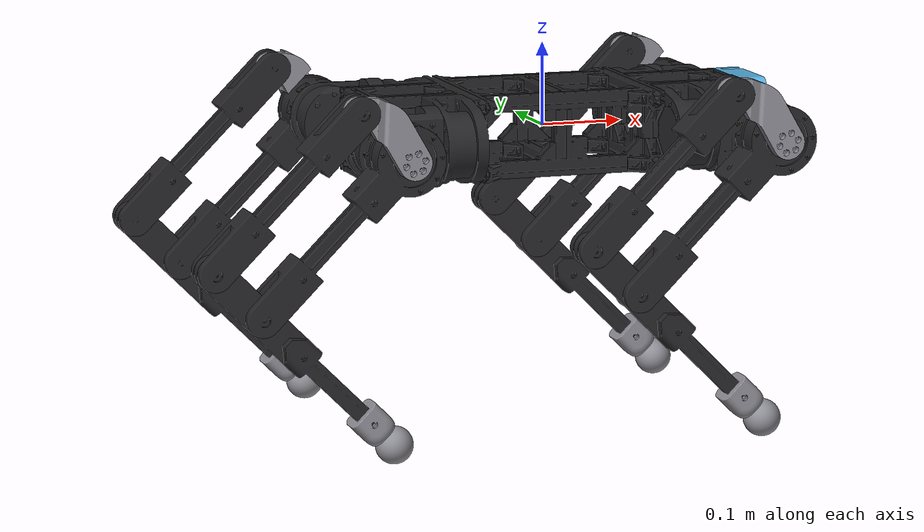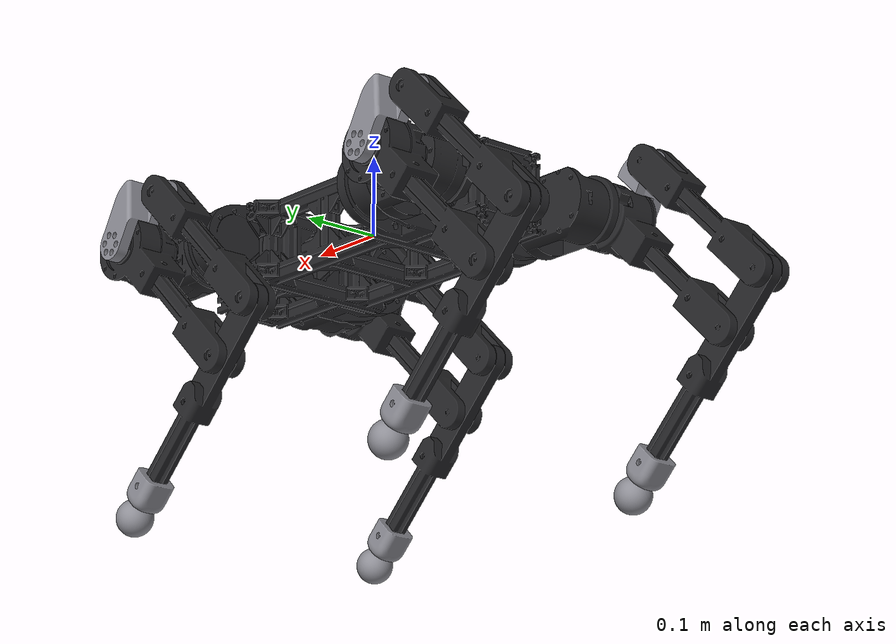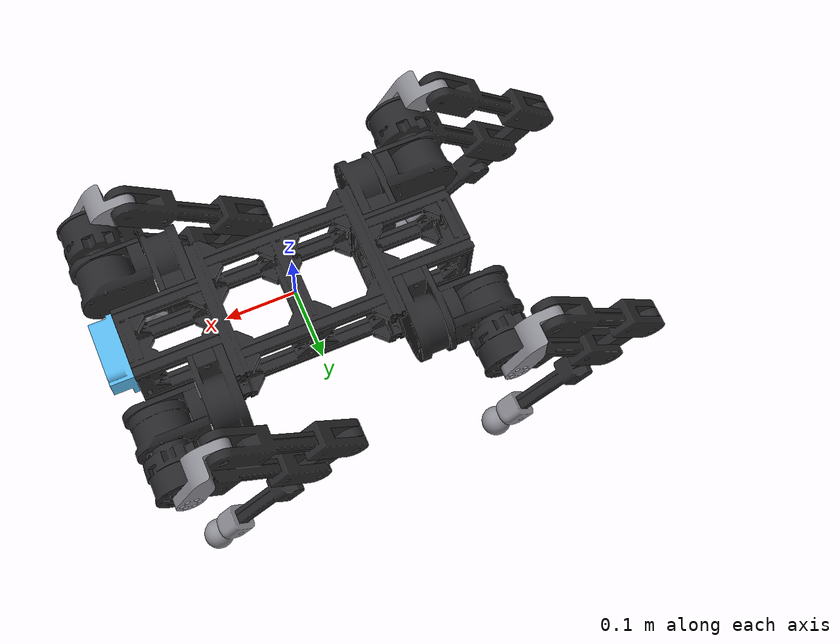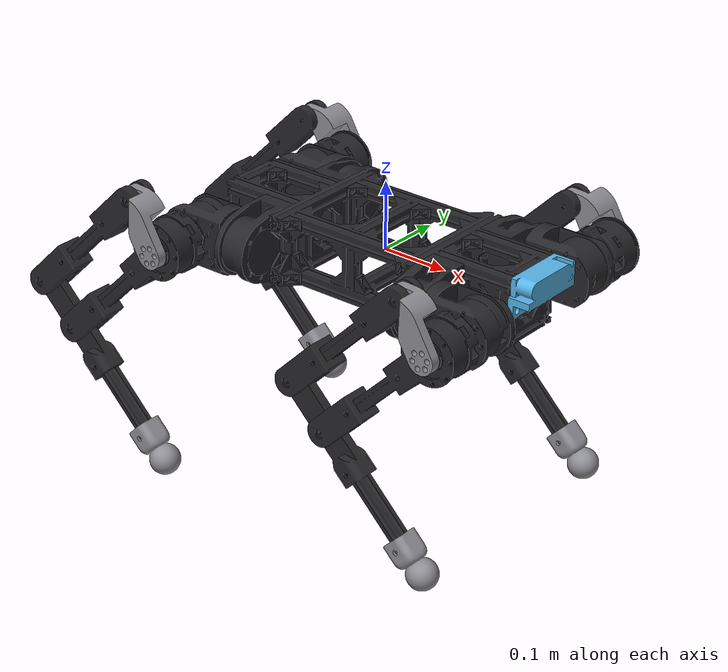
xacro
<?xml version="1.0"?>
<robot name="framedog" xmlns:xacro="http://www.ros.org/wiki/xacro">
  <xacro:arg name="camera_optical_frames" default="true"/>

  <xacro:include filename="$(find framedog_description)/urdf/framedog.urdf.xacro"/>
  <xacro:include filename="$(find framedog_description)/urdf/d435i.xacro"/>

  <xacro:d435i_camera parent="base_link" optical_frames="$(arg camera_optical_frames)">
    <origin xyz="0.248 0 0.0375" rpy="0 0 0"/>
  </xacro:d435i_camera>
</robot>

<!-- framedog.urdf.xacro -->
<!-- AUTO-GENERATED by gen_framedog_description.py (kept with the Fusion export) - do not edit by hand. -->
<robot name="framedog" xmlns:xacro="http://www.ros.org/wiki/xacro">
  <xacro:include filename="$(find framedog_description)/urdf/leg.xacro"/>
  <xacro:arg name="mesh_pkg" default="package://framedog_description/meshes"/>

  <link name="base_link">
    <visual>
      <origin xyz="0 0 0" rpy="0 0 0"/>
      <geometry><mesh filename="$(arg mesh_pkg)/body/body.stl" scale="0.001 0.001 0.001"/></geometry>
      <material name="framedog_dark"/>
    </visual>
    <collision>
      <origin xyz="0 0 0" rpy="0 0 0"/>
      <geometry><mesh filename="$(arg mesh_pkg)/body/body.stl" scale="0.001 0.001 0.001"/></geometry>
    </collision>
    <inertial>
      <origin xyz="0 0 0" rpy="0 0 0"/>
      <mass value="3.7216718"/>
      <inertia ixx="0.015356305" ixy="0" ixz="0" iyy="0.076028916" iyz="0" izz="0.082577223"/>
    </inertial>
  </link>

  <xacro:framedog_leg prefix="lf" side="left" parent="base_link" mesh_pkg="$(arg mesh_pkg)" thigh_zflip="false">
    <origin xyz="0.1475 0.05 0" rpy="0 0 0"/>
  </xacro:framedog_leg>
  <xacro:framedog_leg prefix="rf" side="right" parent="base_link" mesh_pkg="$(arg mesh_pkg)" thigh_zflip="false">
    <origin xyz="0.1475 -0.05 0" rpy="0 0 0"/>
  </xacro:framedog_leg>
  <xacro:framedog_leg prefix="lr" side="left" parent="base_link" mesh_pkg="$(arg mesh_pkg)" thigh_zflip="true">
    <origin xyz="-0.1475 0.05 0" rpy="0 3.1415927 0"/>
  </xacro:framedog_leg>
  <xacro:framedog_leg prefix="rr" side="right" parent="base_link" mesh_pkg="$(arg mesh_pkg)" thigh_zflip="true">
    <origin xyz="-0.1475 -0.05 0" rpy="0 3.1415927 0"/>
  </xacro:framedog_leg>
</robot>

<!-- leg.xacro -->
<!-- AUTO-GENERATED by gen_framedog_description.py (kept with the Fusion export) - do not edit by hand. -->
<robot xmlns:xacro="http://www.ros.org/wiki/xacro">

  <material name="framedog_dark"><color rgba="0.15 0.15 0.16 1.0"/></material>
  <material name="framedog_accent"><color rgba="0.55 0.55 0.58 1.0"/></material>

  <xacro:property name="L_root_xyz" value="0 0 0"/>
  <xacro:property name="L_root_rpy" value="0 0 0"/>
  <xacro:property name="L_roll_xyz" value="0.018 0.06175 0"/>
  <xacro:property name="L_roll_rpy" value="0 1.5707963 0"/>
  <xacro:property name="L_pitch_xyz" value="0 0.02475 0.06525"/>
  <xacro:property name="L_pitch_rpy" value="1.5707963 -0.78539816 3.1415927"/>
  <xacro:property name="L_knee_xyz" value="0 0 0.0695"/>
  <xacro:property name="L_knee_rpy" value="0 0 -1.5707963"/>
  <xacro:property name="L_calf_xyz" value="-0.25 0 0.0475"/>
  <xacro:property name="L_calf_rpy" value="0 0 -3.1415927"/>
  <xacro:property name="L_tip_xyz" value="0 -0.20094874 0"/>
  <xacro:property name="L_tip_rpy" value="1.5707963 0 -3.1415927"/>
  <xacro:property name="L_coupler_xyz" value="0.08 0 -0.022"/>
  <xacro:property name="L_coupler_rpy" value="3.1415927 0 -3.1415927"/>
  <xacro:property name="L_pitchflip_rpy" value="-1.5707963 0.78539816 0"/>
  <xacro:property name="L_rollh_m" value="0.72870928"/>
  <xacro:property name="L_rollh_com" value="-0.00038794827 0.053156374 0"/>
  <xacro:property name="L_rollh_I" value="0.0010631884 -1.3827057e-05 0 0.00059888811 0 0.00072778298"/>
  <xacro:property name="L_pitchh_m" value="0.75903525"/>
  <xacro:property name="L_pitchh_com" value="4.5098917e-05 0.0032727473 0.057219963"/>
  <xacro:property name="L_pitchh_I" value="0.00080288249 6.2916815e-07 -2.7486433e-07 0.001040073 -1.9947666e-05 0.00062490368"/>
  <xacro:property name="L_thigh_m" value="0.90408017"/>
  <xacro:property name="L_thigh_com" value="-0.046898467 0 0.047131441"/>
  <xacro:property name="L_thigh_I" value="0.0005630325 0 1.0331473e-05 0.0065248909 0 0.006669107"/>
  <xacro:property name="L_crank_m" value="0.10539297"/>
  <xacro:property name="L_crank_com" value="0.047660409 0.0087453617 -0.0064630186"/>
  <xacro:property name="L_crank_I" value="3.9198023e-05 -4.157117e-06 3.0530939e-05 0.00010496545 -1.2479176e-06 0.00010040651"/>
  <xacro:property name="L_calf_m" value="0.22705141"/>
  <xacro:property name="L_calf_com" value="0 -0.039562371 0"/>
  <xacro:property name="L_calf_I" value="0.0013843365 0 0 3.3111653e-05 0 0.0013939659"/>
  <xacro:property name="L_tip_m" value="0.095581252"/>
  <xacro:property name="L_tip_com" value="8.5017375e-07 0.00094792881 -0.0069263279"/>
  <xacro:property name="L_tip_I" value="5.6163655e-05 -1.0856409e-08 -1.1076109e-09 5.6347983e-05 1.0057151e-09 2.3367354e-05"/>
  <xacro:property name="L_coupler_m" value="0.33568127"/>
  <xacro:property name="L_coupler_com" value="0 -0.125 -0.00012450737"/>
  <xacro:property name="L_coupler_I" value="0.0027443058 0 0 8.4815237e-05 0 0.0027292716"/>
  <xacro:property name="R_root_xyz" value="0 0 0"/>
  <xacro:property name="R_root_rpy" value="3.1415927 0 0"/>
  <xacro:property name="R_roll_xyz" value="0.018 0.06175 0"/>
  <xacro:property name="R_roll_rpy" value="0 1.5707963 0"/>
  <xacro:property name="R_pitch_xyz" value="0 0.02475 0.06525"/>
  <xacro:property name="R_pitch_rpy" value="-1.5707963 -0.78539816 0"/>
  <xacro:property name="R_knee_xyz" value="0 0 0.0695"/>
  <xacro:property name="R_knee_rpy" value="0 0 -1.5707963"/>
  <xacro:property name="R_calf_xyz" value="-0.25 0 0.0475"/>
  <xacro:property name="R_calf_rpy" value="0 0 0"/>
  <xacro:property name="R_tip_xyz" value="0 -0.20094874 0"/>
  <xacro:property name="R_tip_rpy" value="1.5707963 0 3.1415927"/>
  <xacro:property name="R_coupler_xyz" value="-0.08 0 -0.022"/>
  <xacro:property name="R_coupler_rpy" value="3.1415927 0 3.1415927"/>
  <xacro:property name="R_pitchflip_rpy" value="1.5707963 0.78539816 -3.1415927"/>
  <xacro:property name="R_rollh_m" value="0.72870928"/>
  <xacro:property name="R_rollh_com" value="-0.00038794827 0.053156374 0"/>
  <xacro:property name="R_rollh_I" value="0.0010631884 -1.3827057e-05 0 0.00059888811 0 0.00072778298"/>
  <xacro:property name="R_pitchh_m" value="0.75903525"/>
  <xacro:property name="R_pitchh_com" value="4.5098922e-05 0.0032727473 0.057219963"/>
  <xacro:property name="R_pitchh_I" value="0.00080288249 6.2916808e-07 -2.7486452e-07 0.001040073 -1.9947666e-05 0.00062490368"/>
  <xacro:property name="R_thigh_m" value="0.90408017"/>
  <xacro:property name="R_thigh_com" value="-0.046898467 0 0.047131441"/>
  <xacro:property name="R_thigh_I" value="0.0005630325 0 1.0331473e-05 0.0065248909 0 0.006669107"/>
  <xacro:property name="R_crank_m" value="0.10537857"/>
  <xacro:property name="R_crank_com" value="-0.047656002 0.0087465784 -0.0064608986"/>
  <xacro:property name="R_crank_I" value="3.9192265e-05 4.1612466e-06 -3.0523721e-05 0.00010494579 -1.245929e-06 0.00010038938"/>
  <xacro:property name="R_calf_m" value="0.22705141"/>
  <xacro:property name="R_calf_com" value="0 -0.039562371 0"/>
  <xacro:property name="R_calf_I" value="0.0013843365 0 0 3.3111653e-05 0 0.0013939659"/>
  <xacro:property name="R_tip_m" value="0.095581252"/>
  <xacro:property name="R_tip_com" value="8.5017375e-07 0.00094792881 -0.0069263279"/>
  <xacro:property name="R_tip_I" value="5.6163655e-05 -1.0856409e-08 -1.1076109e-09 5.6347983e-05 1.0057151e-09 2.3367354e-05"/>
  <xacro:property name="R_coupler_m" value="0.33568127"/>
  <xacro:property name="R_coupler_com" value="0 -0.125 -0.00012450737"/>
  <xacro:property name="R_coupler_I" value="0.0027443058 0 0 8.4815237e-05 0 0.0027292716"/>

  <xacro:macro name="framedog_leg" params="prefix side parent mesh_pkg:=package://framedog_description/meshes knee_mimic:=1.0 coupler_mimic:=1.0 thigh_zflip:=false *origin">
    <xacro:property name="L" value="${side == 'left'}"/>
    <xacro:property name="md" value="${mesh_pkg}/leg"/>

    <xacro:macro name="leg_link" params="name mesh m com I material:=framedog_dark">
      <link name="${name}">
        <visual>
          <origin xyz="0 0 0" rpy="0 0 0"/>
          <geometry><mesh filename="${md}/${mesh}.stl" scale="0.001 0.001 0.001"/></geometry>
          <material name="${material}"/>
        </visual>
        <collision>
          <origin xyz="0 0 0" rpy="0 0 0"/>
          <geometry><mesh filename="${md}/${mesh}.stl" scale="0.001 0.001 0.001"/></geometry>
        </collision>
        <inertial>
          <origin xyz="${com}" rpy="0 0 0"/>
          <mass value="${m}"/>
          <inertia ixx="${I.split()[0]}" ixy="${I.split()[1]}" ixz="${I.split()[2]}"
                   iyy="${I.split()[3]}" iyz="${I.split()[4]}" izz="${I.split()[5]}"/>
        </inertial>
      </link>
    </xacro:macro>

    <!-- links -->
    <xacro:leg_link name="${prefix}_roll_holder_link"  mesh="leg_roll_motor_holder"  m="${L_rollh_m if L else R_rollh_m}"  com="${L_rollh_com if L else R_rollh_com}"  I="${L_rollh_I if L else R_rollh_I}"/>
    <xacro:leg_link name="${prefix}_pitch_holder_link" mesh="leg_pitch_motor_holder" m="${L_pitchh_m if L else R_pitchh_m}" com="${L_pitchh_com if L else R_pitchh_com}" I="${L_pitchh_I if L else R_pitchh_I}"/>
    <xacro:leg_link name="${prefix}_thigh_link"        mesh="leg_thigh"              m="${L_thigh_m if L else R_thigh_m}"  com="${L_thigh_com if L else R_thigh_com}"  I="${L_thigh_I if L else R_thigh_I}"/>
    <xacro:leg_link name="${prefix}_knee_crank_link"   mesh="leg_knee_crank_${side}" m="${L_crank_m if L else R_crank_m}"  com="${L_crank_com if L else R_crank_com}"  I="${L_crank_I if L else R_crank_I}"  material="framedog_accent"/>
    <xacro:leg_link name="${prefix}_calf_link"         mesh="leg_calf"               m="${L_calf_m if L else R_calf_m}"   com="${L_calf_com if L else R_calf_com}"   I="${L_calf_I if L else R_calf_I}"/>
    <xacro:leg_link name="${prefix}_tip_link"          mesh="leg_tip"                m="${L_tip_m if L else R_tip_m}"    com="${L_tip_com if L else R_tip_com}"    I="${L_tip_I if L else R_tip_I}"   material="framedog_accent"/>
    <xacro:leg_link name="${prefix}_knee_coupler_link" mesh="leg_knee_coupler"       m="${L_coupler_m if L else R_coupler_m}" com="${L_coupler_com if L else R_coupler_com}" I="${L_coupler_I if L else R_coupler_I}"/>

    <link name="${prefix}_base_link"/>
    <joint name="${prefix}_mount_joint" type="fixed">
      <xacro:insert_block name="origin"/>
      <parent link="${parent}"/><child link="${prefix}_base_link"/>
    </joint>
    <joint name="${prefix}_root_joint" type="fixed">
      <origin xyz="${L_root_xyz if L else R_root_xyz}" rpy="${L_root_rpy if L else R_root_rpy}"/>
      <parent link="${prefix}_base_link"/><child link="${prefix}_roll_holder_link"/>
    </joint>

    <!-- active #1 (roll motor): roll holder -> pitch holder -->
    <joint name="${prefix}_roll_joint" type="revolute">
      <origin xyz="${L_roll_xyz if L else R_roll_xyz}" rpy="${L_roll_rpy if L else R_roll_rpy}"/>
      <parent link="${prefix}_roll_holder_link"/><child link="${prefix}_pitch_holder_link"/>
      <axis xyz="0 0 1"/>
      <limit lower="${radians(-90)}" upper="${radians(90)}" effort="17" velocity="20"/>
    </joint>

    <!-- active #2 (pitch motor): pitch holder -> thigh.
         thigh_zflip rotates the thigh (and the lower leg it carries) 180 deg about Z. -->
    <joint name="${prefix}_pitch_joint" type="revolute">
      <origin xyz="${L_pitch_xyz if L else R_pitch_xyz}" rpy="${(L_pitchflip_rpy if L else R_pitchflip_rpy) if thigh_zflip else (L_pitch_rpy if L else R_pitch_rpy)}"/>
      <parent link="${prefix}_pitch_holder_link"/><child link="${prefix}_thigh_link"/>
      <axis xyz="0 0 1"/>
      <limit lower="${radians(-110)}" upper="${radians(110)}" effort="17" velocity="20"/>
    </joint>

    <!-- active #3 (knee motor): thigh -> knee crank -->
    <joint name="${prefix}_knee_joint" type="revolute">
      <origin xyz="${L_knee_xyz if L else R_knee_xyz}" rpy="${L_knee_rpy if L else R_knee_rpy}"/>
      <parent link="${prefix}_thigh_link"/><child link="${prefix}_knee_crank_link"/>
      <axis xyz="0 0 1"/>
      <limit lower="${radians(-50) if L else radians(-35)}" upper="${radians(35) if L else radians(50)}" effort="17" velocity="20"/>
    </joint>

    <!-- calf follows the knee crank (4-bar linkage approximated by a mimic) -->
    <joint name="${prefix}_calf_joint" type="revolute">
      <origin xyz="${L_calf_xyz if L else R_calf_xyz}" rpy="${L_calf_rpy if L else R_calf_rpy}"/>
      <parent link="${prefix}_thigh_link"/><child link="${prefix}_calf_link"/>
      <axis xyz="0 0 1"/>
      <limit lower="${radians(-180)}" upper="${radians(180)}" effort="0" velocity="20"/>
      <mimic joint="${prefix}_knee_joint" multiplier="${knee_mimic}" offset="0"/>
    </joint>

    <joint name="${prefix}_tip_joint" type="fixed">
      <origin xyz="${L_tip_xyz if L else R_tip_xyz}" rpy="${L_tip_rpy if L else R_tip_rpy}"/>
      <parent link="${prefix}_calf_link"/><child link="${prefix}_tip_link"/>
    </joint>

    <!-- knee coupler: child of the crank so its origin travels with the crank tip,
         while its orientation tracks the thigh (stays parallel to the ground link). -->
    <joint name="${prefix}_coupler_joint" type="revolute">
      <origin xyz="${L_coupler_xyz if L else R_coupler_xyz}" rpy="${L_coupler_rpy if L else R_coupler_rpy}"/>
      <parent link="${prefix}_knee_crank_link"/><child link="${prefix}_knee_coupler_link"/>
      <axis xyz="0 0 1"/>
      <limit lower="${radians(-180)}" upper="${radians(180)}" effort="0" velocity="20"/>
      <mimic joint="${prefix}_knee_joint" multiplier="${coupler_mimic}" offset="0"/>
    </joint>
  </xacro:macro>
</robot>

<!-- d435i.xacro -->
<robot xmlns:xacro="http://www.ros.org/wiki/xacro">

  <xacro:macro name="d435i_camera"
               params="parent *origin
                       mesh_pkg:=package://framedog_description/meshes
                       optical_frames:=true">

    <!-- Physical camera link: mesh for display, box for stable convex collision. -->
    <link name="d435i_link">
      <visual>
        <origin xyz="0 0 0" rpy="0 0 0"/>
        <geometry>
          <mesh filename="${mesh_pkg}/sensors/d435i_assem.stl" scale="0.001 0.001 0.001"/>
        </geometry>
      </visual>
      <collision>
        <origin xyz="0.008505 0 -0.014995" rpy="0 0 0"/>
        <geometry><box size="0.03303 0.10002 0.05503"/></geometry>
      </collision>
      <inertial>
        <origin xyz="0.006705148 0.001639902 -0.008966958" rpy="0 0 0"/>
        <mass value="0.13620859"/>
        <inertia ixx="0.0001272638" ixy="-4.009e-07" ixz="-4.8685e-06"
                 iyy="3.71598e-05" iyz="-2.00294e-06" izz="0.0001167430"/>
      </inertial>
    </link>

    <joint name="d435i_mount_joint" type="fixed">
      <xacro:insert_block name="origin"/>
      <parent link="${parent}"/>
      <child link="d435i_link"/>
    </joint>

    <!-- REP-103 optical frames. Only when this URDF is the supplier (display / sim);
         on real hardware the realsense2_camera node publishes these instead. -->
    <xacro:if value="${optical_frames}">
      <xacro:macro name="d435i_stream_optical" params="stream">
        <link name="d435i_${stream}_frame"/>
        <joint name="d435i_${stream}_joint" type="fixed">
          <origin xyz="0 0 0" rpy="0 0 0"/>
          <parent link="d435i_link"/>
          <child link="d435i_${stream}_frame"/>
        </joint>
        <link name="d435i_${stream}_optical_frame"/>
        <joint name="d435i_${stream}_optical_joint" type="fixed">
          <origin xyz="0 0 0" rpy="-1.5708 0 -1.5708"/>
          <parent link="d435i_${stream}_frame"/>
          <child link="d435i_${stream}_optical_frame"/>
        </joint>
      </xacro:macro>

      <xacro:d435i_stream_optical stream="color"/>
      <xacro:d435i_stream_optical stream="depth"/>
      <xacro:d435i_stream_optical stream="infra1"/>
      <xacro:d435i_stream_optical stream="infra2"/>

      <!-- United IMU (unite_imu_method=2): /realsense/d435i/imu uses this frame_id.
           Attaches directly to d435i_link (no intermediate frame). -->
      <link name="d435i_imu_optical_frame"/>
      <joint name="d435i_imu_optical_joint" type="fixed">
        <origin xyz="0 0 0" rpy="-1.5708 0 -1.5708"/>
        <parent link="d435i_link"/>
        <child link="d435i_imu_optical_frame"/>
      </joint>
    </xacro:if>

  </xacro:macro>
</robot>
